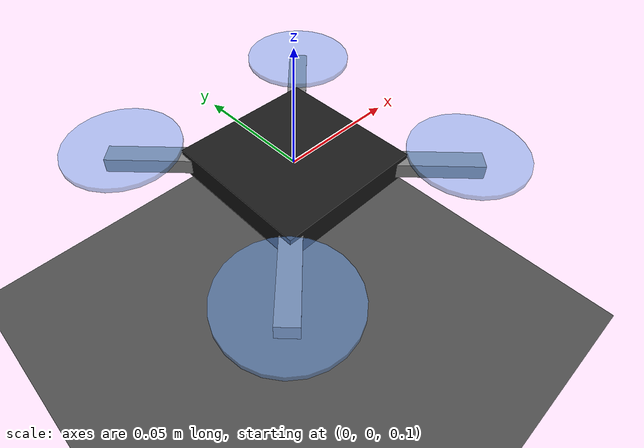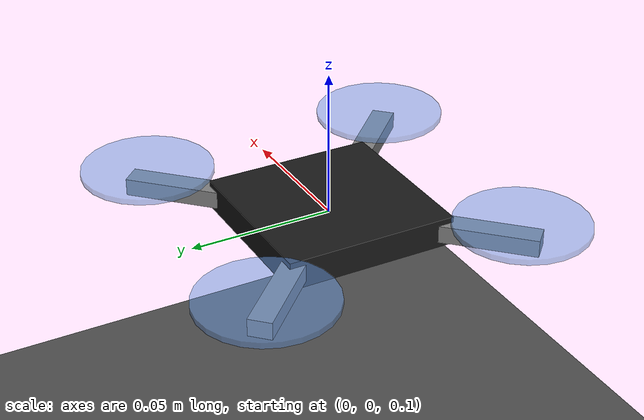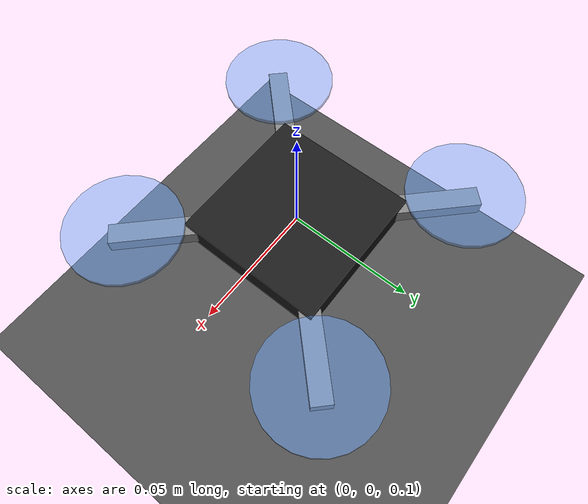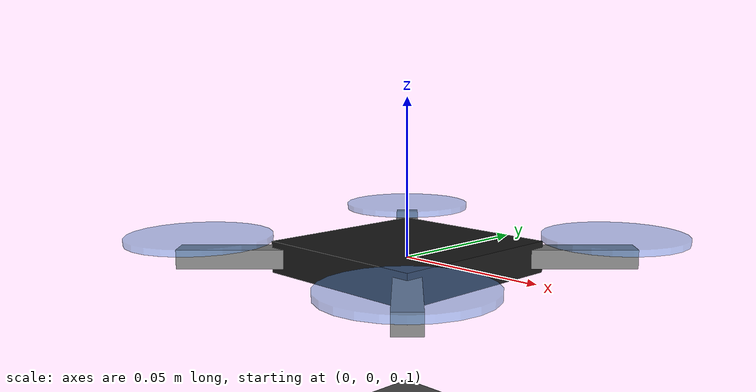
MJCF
<mujoco model="cf2_simple">
  <option integrator="RK4" timestep="0.002" density="1.225" viscosity="1.8e-5"/>

  <!-- Offscreen rendering buffer for MjRenderer video capture -->
  <visual>
    <global offwidth="1920" offheight="1080"/>
    <quality shadowsize="4096"/>
  </visual>

  <worldbody>
    <light pos="0 0 3" dir="0 0 -1" diffuse="0.8 0.8 0.8"/>
    <geom type="plane" size="5 5 0.01" rgba="0.3 0.3 0.3 1"/>

    <body name="cf2" pos="0 0 0.1">
      <freejoint name="root"/>
      <inertial pos="0 0 0" mass="0.027" diaginertia="2.3951e-5 2.3951e-5 3.2347e-5"/>

      <!-- Central frame -->
      <geom type="box" size="0.03 0.03 0.005" rgba="0.1 0.1 0.1 1" name="frame"/>

      <!-- 4 arms (diagonal, 45° rotated) -->
      <geom type="box" pos="0.033 0.033 0" size="0.025 0.004 0.003" euler="0 0 45" name="arm_fr"/>
      <geom type="box" pos="-0.033 0.033 0" size="0.025 0.004 0.003" euler="0 0 -45" name="arm_fl"/>
      <geom type="box" pos="-0.033 -0.033 0" size="0.025 0.004 0.003" euler="0 0 45" name="arm_bl"/>
      <geom type="box" pos="0.033 -0.033 0" size="0.025 0.004 0.003" euler="0 0 -45" name="arm_br"/>

      <!-- 4 rotor discs (translucent cylinders at arm tips) -->
      <geom type="cylinder" pos="0.046 0.046 0.006" size="0.023 0.001" rgba="0.4 0.6 0.9 0.5" name="rotor_fr"/>
      <geom type="cylinder" pos="-0.046 0.046 0.006" size="0.023 0.001" rgba="0.4 0.6 0.9 0.5" name="rotor_fl"/>
      <geom type="cylinder" pos="-0.046 -0.046 0.006" size="0.023 0.001" rgba="0.4 0.6 0.9 0.5" name="rotor_bl"/>
      <geom type="cylinder" pos="0.046 -0.046 0.006" size="0.023 0.001" rgba="0.4 0.6 0.9 0.5" name="rotor_br"/>

      <!-- Sensor and actuation sites -->
      <site name="imu" pos="0 0 0"/>
      <site name="actuation" pos="0 0 0"/>
    </body>
  </worldbody>

  <actuator>
    <!-- gear=1: ctrl values ARE physical forces/torques. Ranges match QuadrotorCommand. -->
    <motor name="body_thrust"  site="actuation" gear="0 0 1 0 0 0" ctrlrange="0 0.6" ctrllimited="true"/>
    <motor name="roll_moment"  site="actuation" gear="0 0 0 1 0 0" ctrlrange="-0.005 0.005" ctrllimited="true"/>
    <motor name="pitch_moment" site="actuation" gear="0 0 0 0 1 0" ctrlrange="-0.005 0.005" ctrllimited="true"/>
    <motor name="yaw_moment"   site="actuation" gear="0 0 0 0 0 1" ctrlrange="-0.002 0.002" ctrllimited="true"/>
  </actuator>

  <sensor>
    <gyro name="body_gyro" site="imu"/>
    <accelerometer name="body_linacc" site="imu"/>
    <framequat name="body_quat" objtype="site" objname="imu"/>
  </sensor>

  <keyframe>
    <key name="hover" qpos="0 0 0.1 1 0 0 0" ctrl="0.26487 0 0 0"/>
  </keyframe>
</mujoco>
